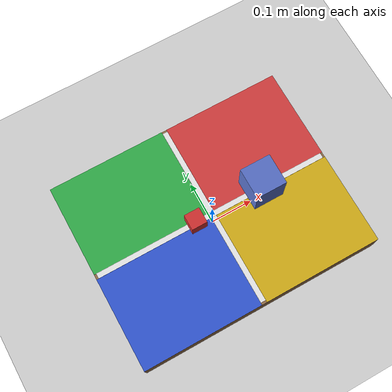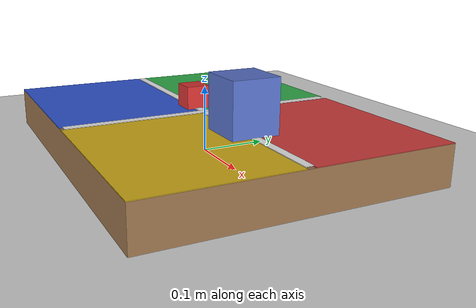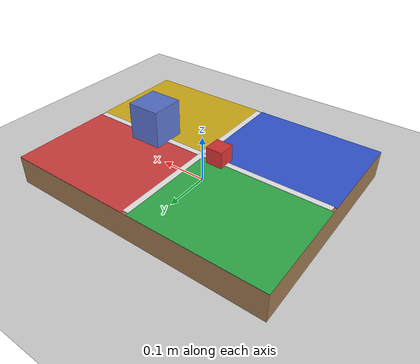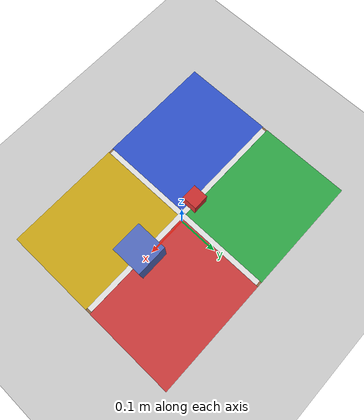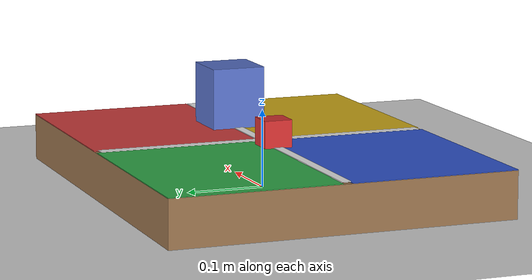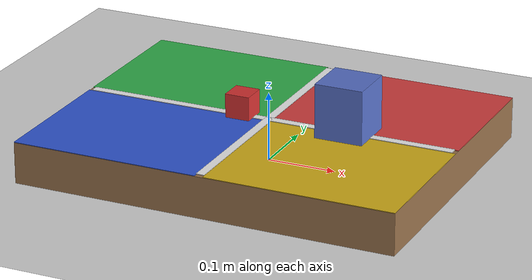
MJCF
<mujoco model="pick_place_demo_franka">
  <!-- Robot-less scene. Compose via env.robot_paths in the task YAML. -->

  <visual>
    <map znear="0.001"/>
  </visual>

  <worldbody>
    <light name="demo_light" pos="0 0 1.5" dir="0 0 -1"/>
    <geom name="floor" type="plane" size="2 2 0.1" rgba="0.85 0.85 0.85 1"/>

    <body name="table" pos="0 0 0.03">
      <geom name="table_top" type="box" size="0.28 0.22 0.03" rgba="0.6 0.45 0.3 1"/>
    </body>

    <geom name="deco_q_NE" type="box" pos=" 0.143  0.113 0.0605" size="0.137 0.107 0.0005" rgba="0.85 0.25 0.25 1" contype="0" conaffinity="0"/>
    <geom name="deco_q_NW" type="box" pos="-0.143  0.113 0.0605" size="0.137 0.107 0.0005" rgba="0.20 0.70 0.30 1" contype="0" conaffinity="0"/>
    <geom name="deco_q_SW" type="box" pos="-0.143 -0.113 0.0605" size="0.137 0.107 0.0005" rgba="0.20 0.35 0.85 1" contype="0" conaffinity="0"/>
    <geom name="deco_q_SE" type="box" pos=" 0.143 -0.113 0.0605" size="0.137 0.107 0.0005" rgba="0.85 0.70 0.10 1" contype="0" conaffinity="0"/>
    <geom name="deco_div_x" type="box" pos="0 0 0.0615" size="0.275 0.006 0.0005" rgba="0.95 0.95 0.95 1" contype="0" conaffinity="0"/>
    <geom name="deco_div_y" type="box" pos="0 0 0.0615" size="0.006 0.215 0.0005" rgba="0.95 0.95 0.95 1" contype="0" conaffinity="0"/>

    <body name="target_pedestal" pos="0.12 0 0.10">
      <geom name="target_pedestal_geom" type="box" size="0.035 0.035 0.04" rgba="0.35 0.45 0.8 1"/>
      <site name="target_pedestal_site" pos="0 0 0" size="0.004" rgba="1 0 0 0"/>
    </body>

    <camera name="env1_cam" pos="0 -0.8 0.5" xyaxes="1 0 0 0 0.447 0.894" fovy="45"/>
    <camera name="env0_cam" pos="0.9 0 0.5" xyaxes="0 1 0 -0.406 0 0.914" fovy="45"/>

    <body name="source_block" pos="-0.04 0 0.078">
      <freejoint name="source_block_joint"/>
      <geom name="source_block_geom" type="box" size="0.018 0.018 0.018" mass="0.08" friction="1.2 0.05 0.01" rgba="0.85 0.2 0.2 1"/>
      <site name="source_block_site" pos="0 0 0" size="0.004" rgba="1 0 0 0"/>
    </body>
  </worldbody>
</mujoco>
